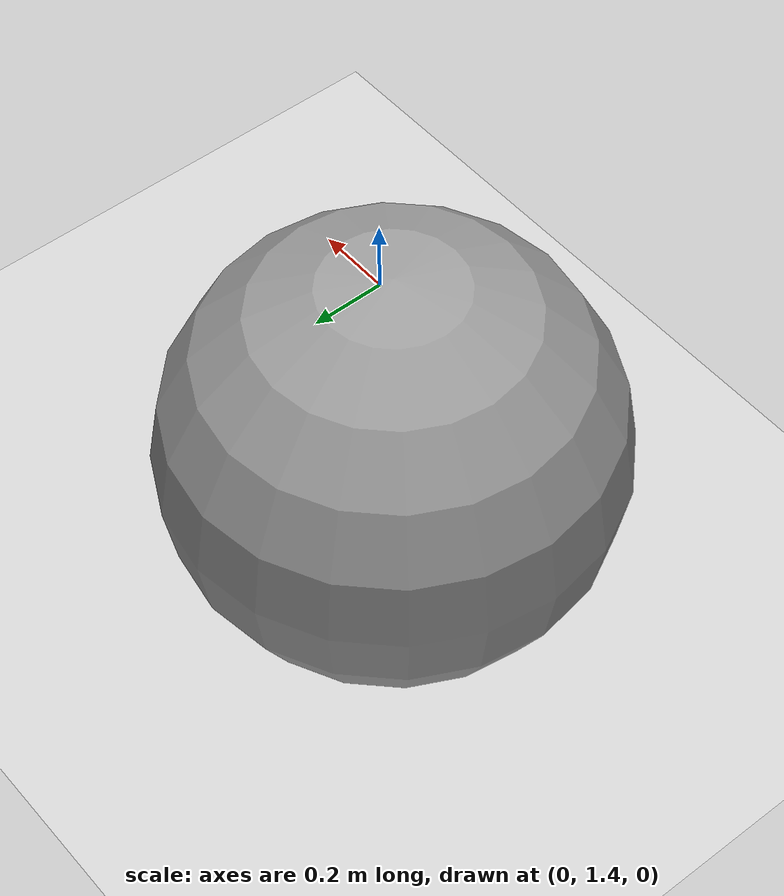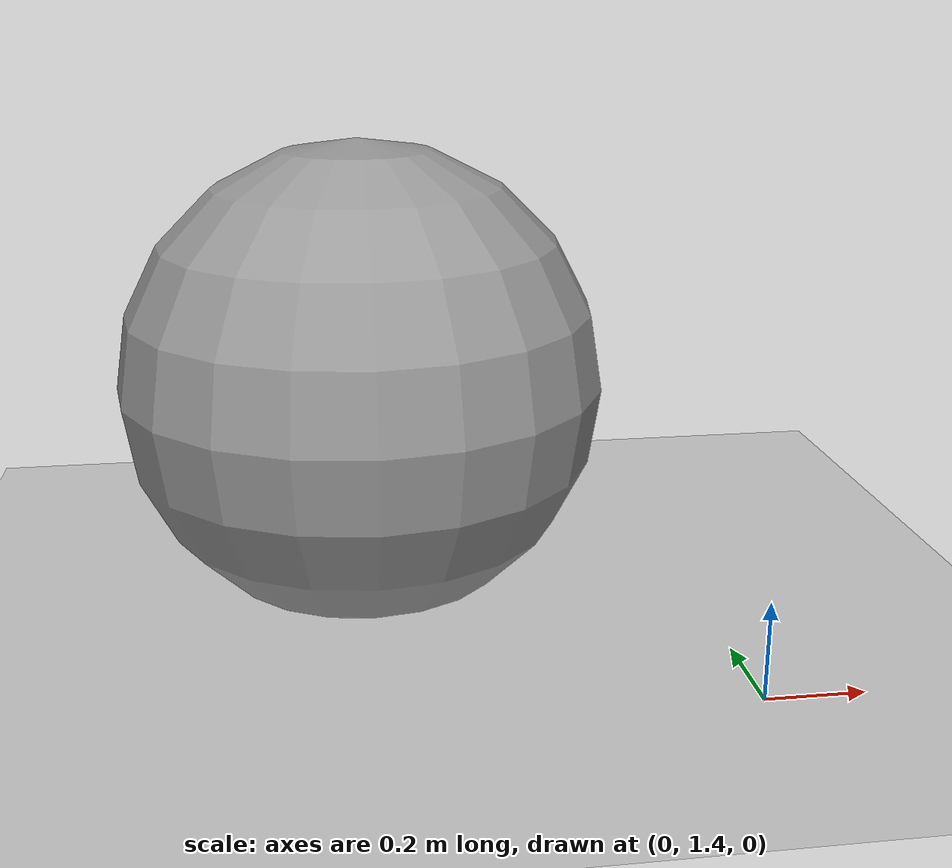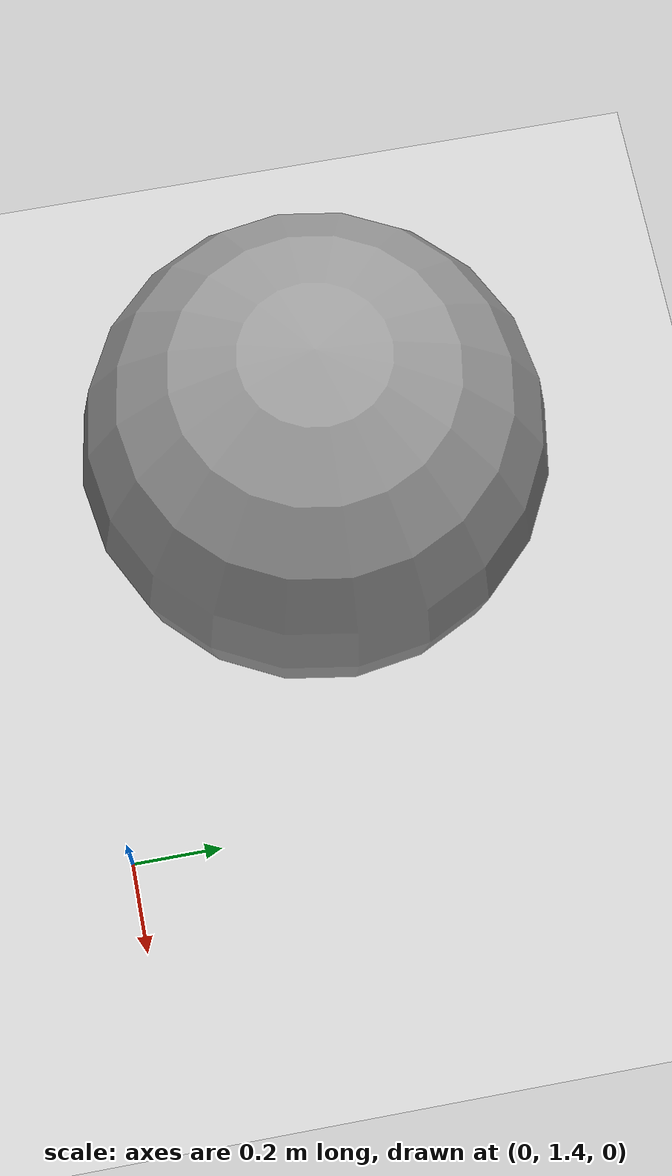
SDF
<sdf version="1.6">
 <world name="default">
  <model name="ground_plane">
   <static>1</static>
   <link name="link">
    <collision name="collision">
     <geometry><plane><normal>0 0 1</normal><size>100 100</size></plane></geometry>
     <surface><friction><ode><mu>100</mu><mu2>50</mu2></ode></friction></surface>
    </collision>
    <visual name="visual">
     <cast_shadows>0</cast_shadows>
     <geometry><plane><normal>0 0 1</normal><size>100 100</size></plane></geometry>
     <material>
      <script><uri>file://media/materials/scripts/gazebo.material</uri><name>Gazebo/Grey</name></script>
     </material>
    </visual>
   </link>
  </model>
  <model name="unit_sphere_0">
   <pose>-0.714111 1.94288 0.5 0 -0 0</pose>
   <link name="link">
    <inertial>
     <mass>1</mass>
     <inertia><ixx>0.1</ixx><ixy>0</ixy><ixz>0</ixz><iyy>0.1</iyy><iyz>0</iyz><izz>0.1</izz></inertia>
    </inertial>
    <collision name="collision"><geometry><sphere><radius>0.5</radius></sphere></geometry></collision>
    <visual name="visual">
     <geometry><sphere><radius>0.5</radius></sphere></geometry>
     <material>
      <script><name>Gazebo/Grey</name><uri>file://media/materials/scripts/gazebo.material</uri></script>
     </material>
    </visual>
   </link>
  </model>
 </world>
</sdf>
